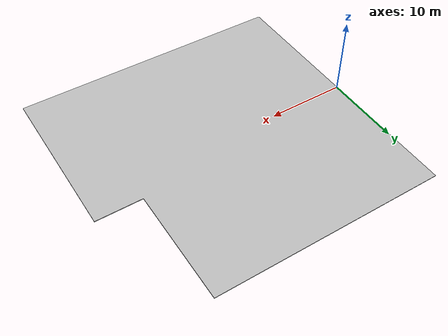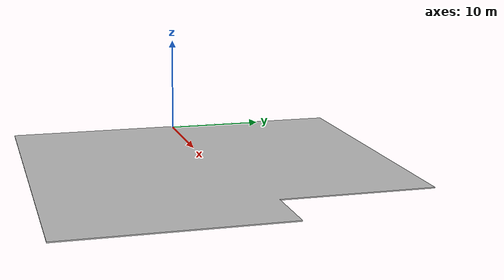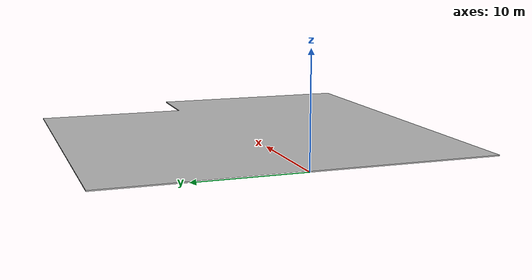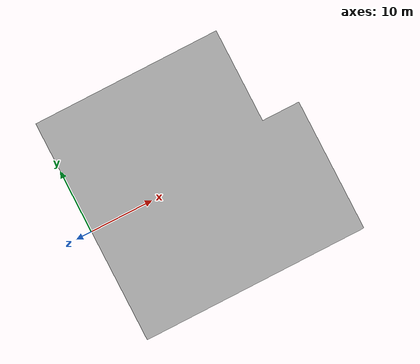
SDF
<?xml version="1.0"?>

<sdf version="1.4">
    <model name="floor">
        <static>true</static>
        <link name="floor_link">

            <visual name="floor_mesh">
                <geometry>
                    <mesh>
                        <uri>model://floor/meshes/model.dae</uri>
                    </mesh>
                </geometry>
            </visual>

            <collision name="floor_collison">
                <pose>18 0 0.05</pose>
                <geometry>
                    <box>
                        <size>36 36 0.1</size>
                    </box>
                </geometry>
            </collision>
        </link>
    </model>
</sdf>
